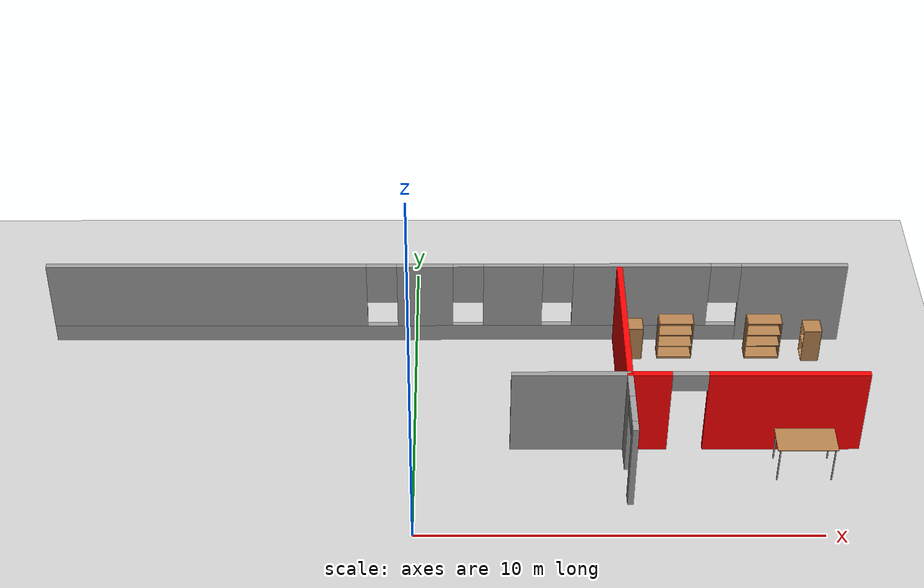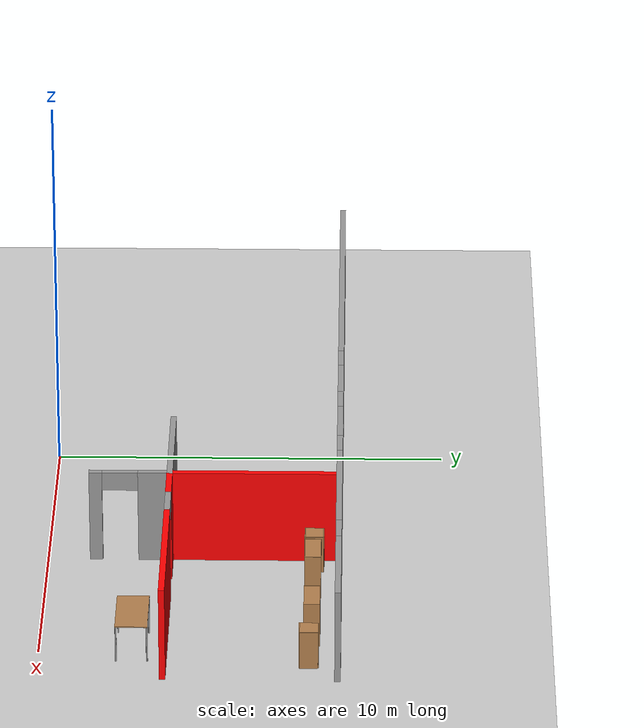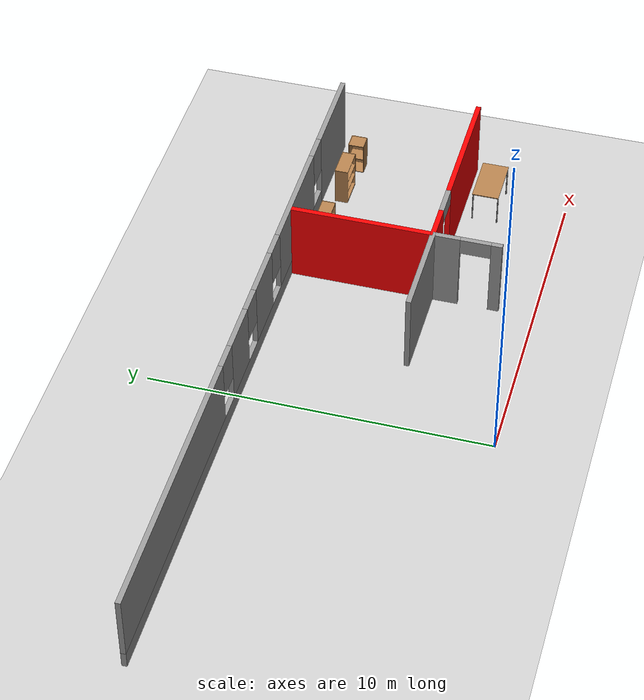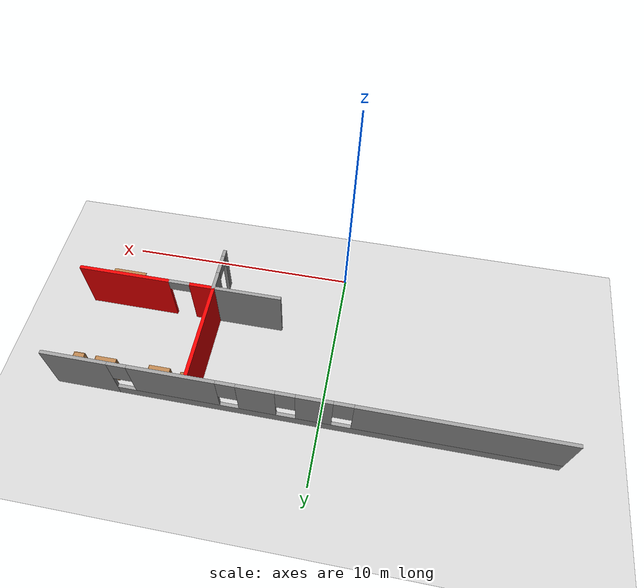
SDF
<sdf version="1.6">
 <world name="default">
  <model name="ground_plane">
   <static>1</static>
   <link name="link">
    <collision name="collision">
     <geometry><plane><normal>0 0 1</normal><size>100 100</size></plane></geometry>
     <surface>
      <contact><collide_bitmask>65535</collide_bitmask></contact>
      <friction><ode><mu>100</mu><mu2>50</mu2></ode></friction>
     </surface>
    </collision>
    <visual name="visual">
     <cast_shadows>0</cast_shadows>
     <geometry><plane><normal>0 0 1</normal><size>100 100</size></plane></geometry>
     <material>
      <script><uri>file://media/materials/scripts/gazebo.material</uri><name>Gazebo/Grey</name></script>
     </material>
    </visual>
   </link>
  </model>
  <model name="cabinet">
   <static>1</static>
   <link name="cabinet_bottom_plate">
    <inertial>
     <pose>0 0 -1 0 -0 0</pose>
     <inertia><ixx>2.05</ixx><ixy>0</ixy><ixz>0</ixz><iyy>2.05</iyy><iyz>0</iyz><izz>2.05</izz></inertia>
     <mass>25</mass>
    </inertial>
    <collision name="cabinet_bottom_plate_geom">
     <pose>0 0 0.01 0 -0 0</pose>
     <geometry><box><size>0.45 0.45 0.02</size></box></geometry>
    </collision>
    <visual name="cabinet_bottom_plate_geom_visual">
     <pose>0 0 0.01 0 -0 0</pose>
     <geometry><box><size>0.45 0.45 0.02</size></box></geometry>
     <material>
      <script><uri>file://media/materials/scripts/gazebo.material</uri><name>Gazebo/Wood</name></script>
     </material>
    </visual>
    <collision name="cabinet_bottom_plate_geom_cabinet_back_plate">
     <pose>0.235 0 0.51 0 -0 0</pose>
     <geometry><box><size>0.02 0.45 1.02</size></box></geometry>
    </collision>
    <visual name="cabinet_bottom_plate_geom_cabinet_back_plate_visual">
     <pose>0.235 0 0.51 0 -0 0</pose>
     <geometry><box><size>0.02 0.45 1.02</size></box></geometry>
     <material>
      <script><uri>file://media/materials/scripts/gazebo.material</uri><name>Gazebo/Wood</name></script>
     </material>
    </visual>
    <collision name="cabinet_bottom_plate_geom_cabinet_left_plate">
     <pose>0 0.235 0.51 0 -0 0</pose>
     <geometry><box><size>0.45 0.02 1.02</size></box></geometry>
    </collision>
    <visual name="cabinet_bottom_plate_geom_cabinet_left_plate_visual">
     <pose>0 0.235 0.51 0 -0 0</pose>
     <geometry><box><size>0.45 0.02 1.02</size></box></geometry>
     <material>
      <script><uri>file://media/materials/scripts/gazebo.material</uri><name>Gazebo/Wood</name></script>
     </material>
    </visual>
    <collision name="cabinet_bottom_plate_geom_cabinet_middle_plate">
     <pose>0 0 0.51 0 -0 0</pose>
     <geometry><box><size>0.45 0.45 0.02</size></box></geometry>
    </collision>
    <visual name="cabinet_bottom_plate_geom_cabinet_middle_plate_visual">
     <pose>0 0 0.51 0 -0 0</pose>
     <geometry><box><size>0.45 0.45 0.02</size></box></geometry>
     <material>
      <script><uri>file://media/materials/scripts/gazebo.material</uri><name>Gazebo/Wood</name></script>
     </material>
    </visual>
    <collision name="cabinet_bottom_plate_geom_cabinet_right_plate">
     <pose>0 -0.235 0.51 0 -0 0</pose>
     <geometry><box><size>0.45 0.02 1.02</size></box></geometry>
    </collision>
    <visual name="cabinet_bottom_plate_geom_cabinet_right_plate_visual">
     <pose>0 -0.235 0.51 0 -0 0</pose>
     <geometry><box><size>0.45 0.02 1.02</size></box></geometry>
     <material>
      <script><uri>file://media/materials/scripts/gazebo.material</uri><name>Gazebo/Wood</name></script>
     </material>
    </visual>
    <collision name="cabinet_bottom_plate_geom_cabinet_top_plate">
     <pose>0 0 1.01 0 -0 0</pose>
     <geometry><box><size>0.45 0.45 0.02</size></box></geometry>
    </collision>
    <visual name="cabinet_bottom_plate_geom_cabinet_top_plate_visual">
     <pose>0 0 1.01 0 -0 0</pose>
     <geometry><box><size>0.45 0.45 0.02</size></box></geometry>
     <material>
      <script><uri>file://media/materials/scripts/gazebo.material</uri><name>Gazebo/Wood</name></script>
     </material>
    </visual>
   </link>
   <pose>5.74006 6.73617 0 0 -0 0</pose>
  </model>
  <model name="cabinet_0">
   <static>1</static>
   <link name="cabinet_bottom_plate">
    <inertial>
     <pose>0 0 -1 0 -0 0</pose>
     <inertia><ixx>2.05</ixx><ixy>0</ixy><ixz>0</ixz><iyy>2.05</iyy><iyz>0</iyz><izz>2.05</izz></inertia>
     <mass>25</mass>
    </inertial>
    <collision name="cabinet_bottom_plate_geom">
     <pose>0 0 0.01 0 -0 0</pose>
     <geometry><box><size>0.45 0.45 0.02</size></box></geometry>
    </collision>
    <visual name="cabinet_bottom_plate_geom_visual">
     <pose>0 0 0.01 0 -0 0</pose>
     <geometry><box><size>0.45 0.45 0.02</size></box></geometry>
     <material>
      <script><uri>file://media/materials/scripts/gazebo.material</uri><name>Gazebo/Wood</name></script>
     </material>
    </visual>
    <collision name="cabinet_bottom_plate_geom_cabinet_back_plate">
     <pose>0.235 0 0.51 0 -0 0</pose>
     <geometry><box><size>0.02 0.45 1.02</size></box></geometry>
    </collision>
    <visual name="cabinet_bottom_plate_geom_cabinet_back_plate_visual">
     <pose>0.235 0 0.51 0 -0 0</pose>
     <geometry><box><size>0.02 0.45 1.02</size></box></geometry>
     <material>
      <script><uri>file://media/materials/scripts/gazebo.material</uri><name>Gazebo/Wood</name></script>
     </material>
    </visual>
    <collision name="cabinet_bottom_plate_geom_cabinet_left_plate">
     <pose>0 0.235 0.51 0 -0 0</pose>
     <geometry><box><size>0.45 0.02 1.02</size></box></geometry>
    </collision>
    <visual name="cabinet_bottom_plate_geom_cabinet_left_plate_visual">
     <pose>0 0.235 0.51 0 -0 0</pose>
     <geometry><box><size>0.45 0.02 1.02</size></box></geometry>
     <material>
      <script><uri>file://media/materials/scripts/gazebo.material</uri><name>Gazebo/Wood</name></script>
     </material>
    </visual>
    <collision name="cabinet_bottom_plate_geom_cabinet_middle_plate">
     <pose>0 0 0.51 0 -0 0</pose>
     <geometry><box><size>0.45 0.45 0.02</size></box></geometry>
    </collision>
    <visual name="cabinet_bottom_plate_geom_cabinet_middle_plate_visual">
     <pose>0 0 0.51 0 -0 0</pose>
     <geometry><box><size>0.45 0.45 0.02</size></box></geometry>
     <material>
      <script><uri>file://media/materials/scripts/gazebo.material</uri><name>Gazebo/Wood</name></script>
     </material>
    </visual>
    <collision name="cabinet_bottom_plate_geom_cabinet_right_plate">
     <pose>0 -0.235 0.51 0 -0 0</pose>
     <geometry><box><size>0.45 0.02 1.02</size></box></geometry>
    </collision>
    <visual name="cabinet_bottom_plate_geom_cabinet_right_plate_visual">
     <pose>0 -0.235 0.51 0 -0 0</pose>
     <geometry><box><size>0.45 0.02 1.02</size></box></geometry>
     <material>
      <script><uri>file://media/materials/scripts/gazebo.material</uri><name>Gazebo/Wood</name></script>
     </material>
    </visual>
    <collision name="cabinet_bottom_plate_geom_cabinet_top_plate">
     <pose>0 0 1.01 0 -0 0</pose>
     <geometry><box><size>0.45 0.45 0.02</size></box></geometry>
    </collision>
    <visual name="cabinet_bottom_plate_geom_cabinet_top_plate_visual">
     <pose>0 0 1.01 0 -0 0</pose>
     <geometry><box><size>0.45 0.45 0.02</size></box></geometry>
     <material>
      <script><uri>file://media/materials/scripts/gazebo.material</uri><name>Gazebo/Wood</name></script>
     </material>
    </visual>
   </link>
   <pose>10.4373 6.648 0 0 -0 0</pose>
  </model>
  <model name="bookshelf">
   <static>1</static>
   <link name="link">
    <inertial><mass>1</mass></inertial>
    <collision name="back">
     <pose>0 0.005 0.6 0 -0 0</pose>
     <geometry><box><size>0.9 0.01 1.2</size></box></geometry>
    </collision>
    <visual name="visual1">
     <pose>0 0.005 0.6 0 -0 0</pose>
     <geometry><box><size>0.9 0.01 1.2</size></box></geometry>
     <material>
      <script><uri>file://media/materials/scripts/gazebo.material</uri><name>Gazebo/Wood</name></script>
     </material>
    </visual>
    <collision name="left_side">
     <pose>0.45 -0.195 0.6 0 -0 0</pose>
     <geometry><box><size>0.02 0.4 1.2</size></box></geometry>
    </collision>
    <visual name="visual2">
     <pose>0.45 -0.195 0.6 0 -0 0</pose>
     <geometry><box><size>0.02 0.4 1.2</size></box></geometry>
     <material>
      <script><uri>file://media/materials/scripts/gazebo.material</uri><name>Gazebo/Wood</name></script>
     </material>
    </visual>
    <collision name="right_side">
     <pose>-0.45 -0.195 0.6 0 -0 0</pose>
     <geometry><box><size>0.02 0.4 1.2</size></box></geometry>
    </collision>
    <visual name="visual3">
     <pose>-0.45 -0.195 0.6 0 -0 0</pose>
     <geometry><box><size>0.02 0.4 1.2</size></box></geometry>
     <material>
      <script><uri>file://media/materials/scripts/gazebo.material</uri><name>Gazebo/Wood</name></script>
     </material>
    </visual>
    <collision name="bottom">
     <pose>0 -0.195 0.03 0 -0 0</pose>
     <geometry><box><size>0.88 0.4 0.06</size></box></geometry>
    </collision>
    <visual name="visual4">
     <pose>0 -0.195 0.03 0 -0 0</pose>
     <geometry><box><size>0.88 0.4 0.06</size></box></geometry>
     <material>
      <script><uri>file://media/materials/scripts/gazebo.material</uri><name>Gazebo/Wood</name></script>
     </material>
    </visual>
    <collision name="top">
     <pose>0 -0.195 1.19 0 -0 0</pose>
     <geometry><box><size>0.88 0.4 0.02</size></box></geometry>
    </collision>
    <visual name="visual5">
     <pose>0 -0.195 1.19 0 -0 0</pose>
     <geometry><box><size>0.88 0.4 0.02</size></box></geometry>
     <material>
      <script><uri>file://media/materials/scripts/gazebo.material</uri><name>Gazebo/Wood</name></script>
     </material>
    </visual>
    <collision name="low_shelf">
     <pose>0 -0.195 0.43 0 -0 0</pose>
     <geometry><box><size>0.88 0.4 0.02</size></box></geometry>
    </collision>
    <visual name="visual6">
     <pose>0 -0.195 0.43 0 -0 0</pose>
     <geometry><box><size>0.88 0.4 0.02</size></box></geometry>
     <material>
      <script><uri>file://media/materials/scripts/gazebo.material</uri><name>Gazebo/Wood</name></script>
     </material>
    </visual>
    <collision name="high_shelf">
     <pose>0 -0.195 0.8 0 -0 0</pose>
     <geometry><box><size>0.88 0.4 0.02</size></box></geometry>
    </collision>
    <visual name="visual7">
     <pose>0 -0.195 0.8 0 -0 0</pose>
     <geometry><box><size>0.88 0.4 0.02</size></box></geometry>
     <material>
      <script><uri>file://media/materials/scripts/gazebo.material</uri><name>Gazebo/Wood</name></script>
     </material>
    </visual>
   </link>
   <pose>6.84495 6.9034 0 0 -0 0</pose>
  </model>
  <model name="bookshelf_0">
   <static>1</static>
   <link name="link">
    <inertial><mass>1</mass></inertial>
    <collision name="back">
     <pose>0 0.005 0.6 0 -0 0</pose>
     <geometry><box><size>0.9 0.01 1.2</size></box></geometry>
    </collision>
    <visual name="visual1">
     <pose>0 0.005 0.6 0 -0 0</pose>
     <geometry><box><size>0.9 0.01 1.2</size></box></geometry>
     <material>
      <script><uri>file://media/materials/scripts/gazebo.material</uri><name>Gazebo/Wood</name></script>
     </material>
    </visual>
    <collision name="left_side">
     <pose>0.45 -0.195 0.6 0 -0 0</pose>
     <geometry><box><size>0.02 0.4 1.2</size></box></geometry>
    </collision>
    <visual name="visual2">
     <pose>0.45 -0.195 0.6 0 -0 0</pose>
     <geometry><box><size>0.02 0.4 1.2</size></box></geometry>
     <material>
      <script><uri>file://media/materials/scripts/gazebo.material</uri><name>Gazebo/Wood</name></script>
     </material>
    </visual>
    <collision name="right_side">
     <pose>-0.45 -0.195 0.6 0 -0 0</pose>
     <geometry><box><size>0.02 0.4 1.2</size></box></geometry>
    </collision>
    <visual name="visual3">
     <pose>-0.45 -0.195 0.6 0 -0 0</pose>
     <geometry><box><size>0.02 0.4 1.2</size></box></geometry>
     <material>
      <script><uri>file://media/materials/scripts/gazebo.material</uri><name>Gazebo/Wood</name></script>
     </material>
    </visual>
    <collision name="bottom">
     <pose>0 -0.195 0.03 0 -0 0</pose>
     <geometry><box><size>0.88 0.4 0.06</size></box></geometry>
    </collision>
    <visual name="visual4">
     <pose>0 -0.195 0.03 0 -0 0</pose>
     <geometry><box><size>0.88 0.4 0.06</size></box></geometry>
     <material>
      <script><uri>file://media/materials/scripts/gazebo.material</uri><name>Gazebo/Wood</name></script>
     </material>
    </visual>
    <collision name="top">
     <pose>0 -0.195 1.19 0 -0 0</pose>
     <geometry><box><size>0.88 0.4 0.02</size></box></geometry>
    </collision>
    <visual name="visual5">
     <pose>0 -0.195 1.19 0 -0 0</pose>
     <geometry><box><size>0.88 0.4 0.02</size></box></geometry>
     <material>
      <script><uri>file://media/materials/scripts/gazebo.material</uri><name>Gazebo/Wood</name></script>
     </material>
    </visual>
    <collision name="low_shelf">
     <pose>0 -0.195 0.43 0 -0 0</pose>
     <geometry><box><size>0.88 0.4 0.02</size></box></geometry>
    </collision>
    <visual name="visual6">
     <pose>0 -0.195 0.43 0 -0 0</pose>
     <geometry><box><size>0.88 0.4 0.02</size></box></geometry>
     <material>
      <script><uri>file://media/materials/scripts/gazebo.material</uri><name>Gazebo/Wood</name></script>
     </material>
    </visual>
    <collision name="high_shelf">
     <pose>0 -0.195 0.8 0 -0 0</pose>
     <geometry><box><size>0.88 0.4 0.02</size></box></geometry>
    </collision>
    <visual name="visual7">
     <pose>0 -0.195 0.8 0 -0 0</pose>
     <geometry><box><size>0.88 0.4 0.02</size></box></geometry>
     <material>
      <script><uri>file://media/materials/scripts/gazebo.material</uri><name>Gazebo/Wood</name></script>
     </material>
    </visual>
   </link>
   <pose>9.1737 6.90323 0 0 -0 0</pose>
  </model>
  <model name="table_4">
   <static>1</static>
   <link name="link">
    <collision name="surface">
     <pose>0 0 1 0 -0 0</pose>
     <geometry><box><size>1.5 0.8 0.03</size></box></geometry>
     <surface><friction><ode><mu>0.6</mu><mu2>0.6</mu2></ode></friction></surface>
    </collision>
    <visual name="visual1">
     <pose>0 0 1 0 -0 0</pose>
     <geometry><box><size>1.5 0.8 0.03</size></box></geometry>
     <material>
      <script><uri>file://media/materials/scripts/gazebo.material</uri><name>Gazebo/Wood</name></script>
     </material>
    </visual>
    <collision name="front_left_leg">
     <pose>0.68 0.38 0.5 0 -0 0</pose>
     <geometry><cylinder><radius>0.02</radius><length>1</length></cylinder></geometry>
    </collision>
    <visual name="front_left_leg">
     <pose>0.68 0.38 0.5 0 -0 0</pose>
     <geometry><cylinder><radius>0.02</radius><length>1</length></cylinder></geometry>
     <material>
      <script><uri>file://media/materials/scripts/gazebo.material</uri><name>Gazebo/Grey</name></script>
     </material>
    </visual>
    <collision name="front_right_leg">
     <pose>0.68 -0.38 0.5 0 -0 0</pose>
     <geometry><cylinder><radius>0.02</radius><length>1</length></cylinder></geometry>
    </collision>
    <visual name="front_right_leg">
     <pose>0.68 -0.38 0.5 0 -0 0</pose>
     <geometry><cylinder><radius>0.02</radius><length>1</length></cylinder></geometry>
     <material>
      <script><uri>file://media/materials/scripts/gazebo.material</uri><name>Gazebo/Grey</name></script>
     </material>
    </visual>
    <collision name="back_right_leg">
     <pose>-0.68 -0.38 0.5 0 -0 0</pose>
     <geometry><cylinder><radius>0.02</radius><length>1</length></cylinder></geometry>
    </collision>
    <visual name="back_right_leg">
     <pose>-0.68 -0.38 0.5 0 -0 0</pose>
     <geometry><cylinder><radius>0.02</radius><length>1</length></cylinder></geometry>
     <material>
      <script><uri>file://media/materials/scripts/gazebo.material</uri><name>Gazebo/Grey</name></script>
     </material>
    </visual>
    <collision name="back_left_leg">
     <pose>-0.68 0.38 0.5 0 -0 0</pose>
     <geometry><cylinder><radius>0.02</radius><length>1</length></cylinder></geometry>
    </collision>
    <visual name="back_left_leg">
     <pose>-0.68 0.38 0.5 0 -0 0</pose>
     <geometry><cylinder><radius>0.02</radius><length>1</length></cylinder></geometry>
     <material>
      <script><uri>file://media/materials/scripts/gazebo.material</uri><name>Gazebo/Grey</name></script>
     </material>
    </visual>
   </link>
   <pose>9.71379 2.30831 0 0 -0 0</pose>
  </model>
  <model name="Building">
   <link name="Wall_23">
    <pose>3.08665 4.40915 0 0 -0 7.8e-05</pose>
    <inertial>
     <mass>1</mass>
     <inertia><ixx>1</ixx><ixy>0</ixy><ixz>0</ixz><iyy>1</iyy><iyz>0</iyz><izz>1</izz></inertia>
    </inertial>
    <visual name="Wall_23_Visual">
     <pose>0 0 1.25 0 -0 0</pose>
     <geometry><box><size>3 0.15 2.5</size></box></geometry>
     <material>
      <script><uri>file://media/materials/scripts/gazebo.material</uri><name>Gazebo/Grey</name></script>
      <ambient>0 0 0 1</ambient>
      <shader type="pixel"><normal_map>__default__</normal_map></shader>
      <diffuse>0.7 0.7 0.7 1</diffuse>
      <specular>0.01 0.01 0.01 1</specular>
      <emissive>0 0 0 1</emissive>
     </material>
     <meta><layer>0</layer></meta>
    </visual>
    <collision name="Wall_23_Collision">
     <pose>0 0 1.25 0 -0 0</pose>
     <geometry><box><size>3 0.15 2.5</size></box></geometry>
     <surface>
      <friction>
       <ode><mu>1</mu><mu2>1</mu2><fdir1>0 0 0</fdir1><slip1>0</slip1><slip2>0</slip2></ode>
       <torsional>
        <coefficient>1</coefficient>
        <patch_radius>0</patch_radius>
        <surface_radius>0</surface_radius>
        <use_patch_radius>1</use_patch_radius>
        <ode><slip>0</slip></ode>
       </torsional>
      </friction>
      <bounce><restitution_coefficient>0</restitution_coefficient><threshold>1e+06</threshold></bounce>
      <contact>
       <collide_without_contact>0</collide_without_contact>
       <collide_without_contact_bitmask>1</collide_without_contact_bitmask>
       <collide_bitmask>1</collide_bitmask>
       <ode>
        <soft_cfm>0</soft_cfm>
        <soft_erp>0.2</soft_erp>
        <kp>1e+13</kp>
        <kd>1</kd>
        <max_vel>0.01</max_vel>
        <min_depth>0</min_depth>
       </ode>
       <bullet>
        <split_impulse>1</split_impulse>
        <split_impulse_penetration_threshold>-0.01</split_impulse_penetration_threshold>
        <soft_cfm>0</soft_cfm>
        <soft_erp>0.2</soft_erp>
        <kp>1e+13</kp>
        <kd>1</kd>
       </bullet>
      </contact>
     </surface>
    </collision>
   </link>
   <link name="Wall_24">
    <pose>4.51162 6.46826 0 0 -0 1.5708</pose>
    <inertial>
     <mass>1</mass>
     <inertia><ixx>1</ixx><ixy>0</ixy><ixz>0</ixz><iyy>1</iyy><iyz>0</iyz><izz>1</izz></inertia>
    </inertial>
    <visual name="Wall_24_Visual">
     <pose>0 0 1.25 0 -0 0</pose>
     <geometry><box><size>4.268 0.15 2.5</size></box></geometry>
     <material>
      <script><uri>file://media/materials/scripts/gazebo.material</uri><name>Gazebo/Grey</name></script>
      <ambient>1 0 0 1</ambient>
      <shader type="pixel"><normal_map>__default__</normal_map></shader>
      <diffuse>0.7 0.7 0.7 1</diffuse>
      <specular>0.01 0.01 0.01 1</specular>
      <emissive>0 0 0 1</emissive>
     </material>
     <meta><layer>0</layer></meta>
    </visual>
    <collision name="Wall_24_Collision">
     <pose>0 0 1.25 0 -0 0</pose>
     <geometry><box><size>4.268 0.15 2.5</size></box></geometry>
     <surface>
      <friction>
       <ode><mu>1</mu><mu2>1</mu2><fdir1>0 0 0</fdir1><slip1>0</slip1><slip2>0</slip2></ode>
       <torsional>
        <coefficient>1</coefficient>
        <patch_radius>0</patch_radius>
        <surface_radius>0</surface_radius>
        <use_patch_radius>1</use_patch_radius>
        <ode><slip>0</slip></ode>
       </torsional>
      </friction>
      <bounce><restitution_coefficient>0</restitution_coefficient><threshold>1e+06</threshold></bounce>
      <contact>
       <collide_without_contact>0</collide_without_contact>
       <collide_without_contact_bitmask>1</collide_without_contact_bitmask>
       <collide_bitmask>1</collide_bitmask>
       <ode>
        <soft_cfm>0</soft_cfm>
        <soft_erp>0.2</soft_erp>
        <kp>1e+13</kp>
        <kd>1</kd>
        <max_vel>0.01</max_vel>
        <min_depth>0</min_depth>
       </ode>
       <bullet>
        <split_impulse>1</split_impulse>
        <split_impulse_penetration_threshold>-0.01</split_impulse_penetration_threshold>
        <soft_cfm>0</soft_cfm>
        <soft_erp>0.2</soft_erp>
        <kp>1e+13</kp>
        <kd>1</kd>
       </bullet>
      </contact>
     </surface>
    </collision>
   </link>
   <link name="Wall_30">
    <pose>4.51331 3.42988 0 0 -0 1.57252</pose>
    <inertial>
     <mass>1</mass>
     <inertia><ixx>1</ixx><ixy>0</ixy><ixz>0</ixz><iyy>1</iyy><iyz>0</iyz><izz>1</izz></inertia>
    </inertial>
    <visual name="Wall_30_Visual_2">
     <pose>-0.276937 0 2.25 0 -0 0</pose>
     <geometry><box><size>0.9 0.15 0.5</size></box></geometry>
     <material>
      <script><uri>file://media/materials/scripts/gazebo.material</uri><name>Gazebo/Grey</name></script>
      <ambient>0 0 0 1</ambient>
      <shader type="pixel"><normal_map>__default__</normal_map></shader>
      <diffuse>0.7 0.7 0.7 1</diffuse>
      <specular>0.01 0.01 0.01 1</specular>
      <emissive>0 0 0 1</emissive>
     </material>
     <meta><layer>0</layer></meta>
    </visual>
    <visual name="Wall_30_Visual_0">
     <pose>-0.890603 0 1.25 0 -0 0</pose>
     <geometry><box><size>0.327334 0.15 2.5</size></box></geometry>
     <material>
      <script><uri>file://media/materials/scripts/gazebo.material</uri><name>Gazebo/Grey</name></script>
      <ambient>0 0 0 1</ambient>
      <shader type="pixel"><normal_map>__default__</normal_map></shader>
      <diffuse>0.7 0.7 0.7 1</diffuse>
      <specular>0.01 0.01 0.01 1</specular>
      <emissive>0 0 0 1</emissive>
     </material>
     <meta><layer>0</layer></meta>
    </visual>
    <visual name="Wall_30_Visual_1">
     <pose>0.613667 0 1.25 0 -0 0</pose>
     <geometry><box><size>0.881207 0.15 2.5</size></box></geometry>
     <material>
      <script><uri>file://media/materials/scripts/gazebo.material</uri><name>Gazebo/Grey</name></script>
      <ambient>0 0 0 1</ambient>
      <shader type="pixel"><normal_map>__default__</normal_map></shader>
      <diffuse>0.7 0.7 0.7 1</diffuse>
      <specular>0.01 0.01 0.01 1</specular>
      <emissive>0 0 0 1</emissive>
     </material>
     <meta><layer>0</layer></meta>
    </visual>
    <collision name="Wall_30_Collision_2">
     <pose>-0.276937 0 2.25 0 -0 0</pose>
     <geometry><box><size>0.9 0.15 0.5</size></box></geometry>
     <surface>
      <friction>
       <ode><mu>1</mu><mu2>1</mu2><fdir1>0 0 0</fdir1><slip1>0</slip1><slip2>0</slip2></ode>
       <torsional>
        <coefficient>1</coefficient>
        <patch_radius>0</patch_radius>
        <surface_radius>0</surface_radius>
        <use_patch_radius>1</use_patch_radius>
        <ode><slip>0</slip></ode>
       </torsional>
      </friction>
      <bounce><restitution_coefficient>0</restitution_coefficient><threshold>1e+06</threshold></bounce>
      <contact>
       <collide_without_contact>0</collide_without_contact>
       <collide_without_contact_bitmask>1</collide_without_contact_bitmask>
       <collide_bitmask>1</collide_bitmask>
       <ode>
        <soft_cfm>0</soft_cfm>
        <soft_erp>0.2</soft_erp>
        <kp>1e+13</kp>
        <kd>1</kd>
        <max_vel>0.01</max_vel>
        <min_depth>0</min_depth>
       </ode>
       <bullet>
        <split_impulse>1</split_impulse>
        <split_impulse_penetration_threshold>-0.01</split_impulse_penetration_threshold>
        <soft_cfm>0</soft_cfm>
        <soft_erp>0.2</soft_erp>
        <kp>1e+13</kp>
        <kd>1</kd>
       </bullet>
      </contact>
     </surface>
    </collision>
    <collision name="Wall_30_Collision_1">
     <pose>0.613667 0 1.25 0 -0 0</pose>
     <geometry><box><size>0.881207 0.15 2.5</size></box></geometry>
     <surface>
      <friction>
       <ode><mu>1</mu><mu2>1</mu2><fdir1>0 0 0</fdir1><slip1>0</slip1><slip2>0</slip2></ode>
       <torsional>
        <coefficient>1</coefficient>
        <patch_radius>0</patch_radius>
        <surface_radius>0</surface_radius>
        <use_patch_radius>1</use_patch_radius>
        <ode><slip>0</slip></ode>
       </torsional>
      </friction>
      <bounce><restitution_coefficient>0</restitution_coefficient><threshold>1e+06</threshold></bounce>
      <contact>
       <collide_without_contact>0</collide_without_contact>
       <collide_without_contact_bitmask>1</collide_without_contact_bitmask>
       <collide_bitmask>1</collide_bitmask>
       <ode>
        <soft_cfm>0</soft_cfm>
        <soft_erp>0.2</soft_erp>
        <kp>1e+13</kp>
        <kd>1</kd>
        <max_vel>0.01</max_vel>
        <min_depth>0</min_depth>
       </ode>
       <bullet>
        <split_impulse>1</split_impulse>
        <split_impulse_penetration_threshold>-0.01</split_impulse_penetration_threshold>
        <soft_cfm>0</soft_cfm>
        <soft_erp>0.2</soft_erp>
        <kp>1e+13</kp>
        <kd>1</kd>
       </bullet>
      </contact>
     </surface>
    </collision>
    <collision name="Wall_30_Collision_0">
     <pose>-0.890603 0 1.25 0 -0 0</pose>
     <geometry><box><size>0.327334 0.15 2.5</size></box></geometry>
     <surface>
      <friction>
       <ode><mu>1</mu><mu2>1</mu2><fdir1>0 0 0</fdir1><slip1>0</slip1><slip2>0</slip2></ode>
       <torsional>
        <coefficient>1</coefficient>
        <patch_radius>0</patch_radius>
        <surface_radius>0</surface_radius>
        <use_patch_radius>1</use_patch_radius>
        <ode><slip>0</slip></ode>
       </torsional>
      </friction>
      <bounce><restitution_coefficient>0</restitution_coefficient><threshold>1e+06</threshold></bounce>
      <contact>
       <collide_without_contact>0</collide_without_contact>
       <collide_without_contact_bitmask>1</collide_without_contact_bitmask>
       <collide_bitmask>1</collide_bitmask>
       <ode>
        <soft_cfm>0</soft_cfm>
        <soft_erp>0.2</soft_erp>
        <kp>1e+13</kp>
        <kd>1</kd>
        <max_vel>0.01</max_vel>
        <min_depth>0</min_depth>
       </ode>
       <bullet>
        <split_impulse>1</split_impulse>
        <split_impulse_penetration_threshold>-0.01</split_impulse_penetration_threshold>
        <soft_cfm>0</soft_cfm>
        <soft_erp>0.2</soft_erp>
        <kp>1e+13</kp>
        <kd>1</kd>
       </bullet>
      </contact>
     </surface>
    </collision>
   </link>
   <link name="Wall_32">
    <pose>7.43665 4.40915 0 0 0 -3.8e-05</pose>
    <inertial>
     <mass>1</mass>
     <inertia><ixx>1</ixx><ixy>0</ixy><ixz>0</ixz><iyy>1</iyy><iyz>0</iyz><izz>1</izz></inertia>
    </inertial>
    <visual name="Wall_32_Visual_2">
     <pose>-1.43369 0 2.25 0 -0 0</pose>
     <geometry><box><size>0.9 0.15 0.5</size></box></geometry>
     <material>
      <script><uri>file://media/materials/scripts/gazebo.material</uri><name>Gazebo/Grey</name></script>
      <ambient>1 1 1 1</ambient>
      <shader type="pixel"><normal_map>__default__</normal_map></shader>
      <diffuse>0.7 0.7 0.7 1</diffuse>
      <specular>0.01 0.01 0.01 1</specular>
      <emissive>0 0 0 1</emissive>
     </material>
     <meta><layer>0</layer></meta>
    </visual>
    <visual name="Wall_32_Visual_1">
     <pose>1.00815 0 1.25 0 -0 0</pose>
     <geometry><box><size>3.98369 0.15 2.5</size></box></geometry>
     <material>
      <script><uri>file://media/materials/scripts/gazebo.material</uri><name>Gazebo/Grey</name></script>
      <ambient>1 0 0 1</ambient>
      <shader type="pixel"><normal_map>__default__</normal_map></shader>
      <diffuse>0.7 0.7 0.7 1</diffuse>
      <specular>0.01 0.01 0.01 1</specular>
      <emissive>0 0 0 1</emissive>
     </material>
     <meta><layer>0</layer></meta>
    </visual>
    <visual name="Wall_32_Visual_0">
     <pose>-2.44184 0 1.25 0 -0 0</pose>
     <geometry><box><size>1.11631 0.15 2.5</size></box></geometry>
     <material>
      <script><uri>file://media/materials/scripts/gazebo.material</uri><name>Gazebo/Grey</name></script>
      <ambient>1 0 0 1</ambient>
      <shader type="pixel"><normal_map>__default__</normal_map></shader>
      <diffuse>0.7 0.7 0.7 1</diffuse>
      <specular>0.01 0.01 0.01 1</specular>
      <emissive>0 0 0 1</emissive>
     </material>
     <meta><layer>0</layer></meta>
    </visual>
    <collision name="Wall_32_Collision_1">
     <pose>1.00815 0 1.25 0 -0 0</pose>
     <geometry><box><size>3.98369 0.15 2.5</size></box></geometry>
     <surface>
      <friction>
       <ode><mu>1</mu><mu2>1</mu2><fdir1>0 0 0</fdir1><slip1>0</slip1><slip2>0</slip2></ode>
       <torsional>
        <coefficient>1</coefficient>
        <patch_radius>0</patch_radius>
        <surface_radius>0</surface_radius>
        <use_patch_radius>1</use_patch_radius>
        <ode><slip>0</slip></ode>
       </torsional>
      </friction>
      <bounce><restitution_coefficient>0</restitution_coefficient><threshold>1e+06</threshold></bounce>
      <contact>
       <collide_without_contact>0</collide_without_contact>
       <collide_without_contact_bitmask>1</collide_without_contact_bitmask>
       <collide_bitmask>1</collide_bitmask>
       <ode>
        <soft_cfm>0</soft_cfm>
        <soft_erp>0.2</soft_erp>
        <kp>1e+13</kp>
        <kd>1</kd>
        <max_vel>0.01</max_vel>
        <min_depth>0</min_depth>
       </ode>
       <bullet>
        <split_impulse>1</split_impulse>
        <split_impulse_penetration_threshold>-0.01</split_impulse_penetration_threshold>
        <soft_cfm>0</soft_cfm>
        <soft_erp>0.2</soft_erp>
        <kp>1e+13</kp>
        <kd>1</kd>
       </bullet>
      </contact>
     </surface>
    </collision>
    <collision name="Wall_32_Collision_2">
     <pose>-1.43369 0 2.25 0 -0 0</pose>
     <geometry><box><size>0.9 0.15 0.5</size></box></geometry>
     <surface>
      <friction>
       <ode><mu>1</mu><mu2>1</mu2><fdir1>0 0 0</fdir1><slip1>0</slip1><slip2>0</slip2></ode>
       <torsional>
        <coefficient>1</coefficient>
        <patch_radius>0</patch_radius>
        <surface_radius>0</surface_radius>
        <use_patch_radius>1</use_patch_radius>
        <ode><slip>0</slip></ode>
       </torsional>
      </friction>
      <bounce><restitution_coefficient>0</restitution_coefficient><threshold>1e+06</threshold></bounce>
      <contact>
       <collide_without_contact>0</collide_without_contact>
       <collide_without_contact_bitmask>1</collide_without_contact_bitmask>
       <collide_bitmask>1</collide_bitmask>
       <ode>
        <soft_cfm>0</soft_cfm>
        <soft_erp>0.2</soft_erp>
        <kp>1e+13</kp>
        <kd>1</kd>
        <max_vel>0.01</max_vel>
        <min_depth>0</min_depth>
       </ode>
       <bullet>
        <split_impulse>1</split_impulse>
        <split_impulse_penetration_threshold>-0.01</split_impulse_penetration_threshold>
        <soft_cfm>0</soft_cfm>
        <soft_erp>0.2</soft_erp>
        <kp>1e+13</kp>
        <kd>1</kd>
       </bullet>
      </contact>
     </surface>
    </collision>
    <collision name="Wall_32_Collision_0">
     <pose>-2.44184 0 1.25 0 -0 0</pose>
     <geometry><box><size>1.11631 0.15 2.5</size></box></geometry>
     <surface>
      <friction>
       <ode><mu>1</mu><mu2>1</mu2><fdir1>0 0 0</fdir1><slip1>0</slip1><slip2>0</slip2></ode>
       <torsional>
        <coefficient>1</coefficient>
        <patch_radius>0</patch_radius>
        <surface_radius>0</surface_radius>
        <use_patch_radius>1</use_patch_radius>
        <ode><slip>0</slip></ode>
       </torsional>
      </friction>
      <bounce><restitution_coefficient>0</restitution_coefficient><threshold>1e+06</threshold></bounce>
      <contact>
       <collide_without_contact>0</collide_without_contact>
       <collide_without_contact_bitmask>1</collide_without_contact_bitmask>
       <collide_bitmask>1</collide_bitmask>
       <ode>
        <soft_cfm>0</soft_cfm>
        <soft_erp>0.2</soft_erp>
        <kp>1e+13</kp>
        <kd>1</kd>
        <max_vel>0.01</max_vel>
        <min_depth>0</min_depth>
       </ode>
       <bullet>
        <split_impulse>1</split_impulse>
        <split_impulse_penetration_threshold>-0.01</split_impulse_penetration_threshold>
        <soft_cfm>0</soft_cfm>
        <soft_erp>0.2</soft_erp>
        <kp>1e+13</kp>
        <kd>1</kd>
       </bullet>
      </contact>
     </surface>
    </collision>
   </link>
   <link name="Wall_4">
    <pose>-0.009806 8.675 0 0 -0 3.14159</pose>
    <inertial>
     <mass>1</mass>
     <inertia><ixx>1</ixx><ixy>0</ixy><ixz>0</ixz><iyy>1</iyy><iyz>0</iyz><izz>1</izz></inertia>
    </inertial>
    <visual name="Wall_4_Visual_7">
     <pose>-2.92069 0 1.9 0 -0 0</pose>
     <geometry><box><size>0.8 0.15 1.2</size></box></geometry>
     <material>
      <script><uri>file://media/materials/scripts/gazebo.material</uri><name>Gazebo/Grey</name></script>
      <ambient>0.5 0.5 0.5 1</ambient>
      <shader type="pixel"><normal_map>__default__</normal_map></shader>
      <diffuse>0.7 0.7 0.7 1</diffuse>
      <specular>0.01 0.01 0.01 1</specular>
      <emissive>0 0 0 1</emissive>
     </material>
     <meta><layer>0</layer></meta>
    </visual>
    <visual name="Wall_4_Visual_2">
     <pose>-5.11769 0 1.5 0 -0 0</pose>
     <geometry><box><size>3.59401 0.15 2</size></box></geometry>
     <material>
      <script><uri>file://media/materials/scripts/gazebo.material</uri><name>Gazebo/Grey</name></script>
      <ambient>0.5 0.5 0.5 1</ambient>
      <shader type="pixel"><normal_map>__default__</normal_map></shader>
      <diffuse>0.7 0.7 0.7 1</diffuse>
      <specular>0.01 0.01 0.01 1</specular>
      <emissive>0 0 0 1</emissive>
     </material>
     <meta><layer>0</layer></meta>
    </visual>
    <visual name="Wall_4_Visual_6">
     <pose>-7.3147 0 1.9 0 -0 0</pose>
     <geometry><box><size>0.8 0.15 1.2</size></box></geometry>
     <material>
      <script><uri>file://media/materials/scripts/gazebo.material</uri><name>Gazebo/Grey</name></script>
      <ambient>0.5 0.5 0.5 1</ambient>
      <shader type="pixel"><normal_map>__default__</normal_map></shader>
      <diffuse>0.7 0.7 0.7 1</diffuse>
      <specular>0.01 0.01 0.01 1</specular>
      <emissive>0 0 0 1</emissive>
     </material>
     <meta><layer>0</layer></meta>
    </visual>
    <visual name="Wall_4_Visual_0">
     <pose>-9.10735 0 1.25 0 -0 0</pose>
     <geometry><box><size>2.7853 0.15 2.5</size></box></geometry>
     <material>
      <script><uri>file://media/materials/scripts/gazebo.material</uri><name>Gazebo/Grey</name></script>
      <ambient>0.5 0.5 0.5 1</ambient>
      <shader type="pixel"><normal_map>__default__</normal_map></shader>
      <diffuse>0.7 0.7 0.7 1</diffuse>
      <specular>0.01 0.01 0.01 1</specular>
      <emissive>0 0 0 1</emissive>
     </material>
     <meta><layer>0</layer></meta>
    </visual>
    <visual name="Wall_4_Visual_3">
     <pose>-1.74081 0 1.5 0 -0 0</pose>
     <geometry><box><size>1.55975 0.15 2</size></box></geometry>
     <material>
      <script><uri>file://media/materials/scripts/gazebo.material</uri><name>Gazebo/Grey</name></script>
      <ambient>0.5 0.5 0.5 1</ambient>
      <shader type="pixel"><normal_map>__default__</normal_map></shader>
      <diffuse>0.7 0.7 0.7 1</diffuse>
      <specular>0.01 0.01 0.01 1</specular>
      <emissive>0 0 0 1</emissive>
     </material>
     <meta><layer>0</layer></meta>
    </visual>
    <visual name="Wall_4_Visual_9">
     <pose>1.71744 0 1.9 0 -0 0</pose>
     <geometry><box><size>0.8 0.15 1.2</size></box></geometry>
     <material>
      <script><uri>file://media/materials/scripts/gazebo.material</uri><name>Gazebo/Grey</name></script>
      <ambient>0.5 0.5 0.5 1</ambient>
      <shader type="pixel"><normal_map>__default__</normal_map></shader>
      <diffuse>0.7 0.7 0.7 1</diffuse>
      <specular>0.01 0.01 0.01 1</specular>
      <emissive>0 0 0 1</emissive>
     </material>
     <meta><layer>0</layer></meta>
    </visual>
    <visual name="Wall_4_Visual_5">
     <pose>6.30872 0 1.5 0 -0 0</pose>
     <geometry><box><size>8.38256 0.15 2</size></box></geometry>
     <material>
      <script><uri>file://media/materials/scripts/gazebo.material</uri><name>Gazebo/Grey</name></script>
      <ambient>0.5 0.5 0.5 1</ambient>
      <shader type="pixel"><normal_map>__default__</normal_map></shader>
      <diffuse>0.7 0.7 0.7 1</diffuse>
      <specular>0.01 0.01 0.01 1</specular>
      <emissive>0 0 0 1</emissive>
     </material>
     <meta><layer>0</layer></meta>
    </visual>
    <visual name="Wall_4_Visual_1">
     <pose>1.39265 0 0.25 0 -0 0</pose>
     <geometry><box><size>18.2147 0.15 0.5</size></box></geometry>
     <material>
      <script><uri>file://media/materials/scripts/gazebo.material</uri><name>Gazebo/Grey</name></script>
      <ambient>0.5 0.5 0.5 1</ambient>
      <shader type="pixel"><normal_map>__default__</normal_map></shader>
      <diffuse>0.7 0.7 0.7 1</diffuse>
      <specular>0.01 0.01 0.01 1</specular>
      <emissive>0 0 0 1</emissive>
     </material>
     <meta><layer>0</layer></meta>
    </visual>
    <visual name="Wall_4_Visual_8">
     <pose>-0.560937 0 1.9 0 -0 0</pose>
     <geometry><box><size>0.8 0.15 1.2</size></box></geometry>
     <material>
      <script><uri>file://media/materials/scripts/gazebo.material</uri><name>Gazebo/Grey</name></script>
      <ambient>0.5 0.5 0.5 1</ambient>
      <shader type="pixel"><normal_map>__default__</normal_map></shader>
      <diffuse>0.7 0.7 0.7 1</diffuse>
      <specular>0.01 0.01 0.01 1</specular>
      <emissive>0 0 0 1</emissive>
     </material>
     <meta><layer>0</layer></meta>
    </visual>
    <visual name="Wall_4_Visual_4">
     <pose>0.578252 0 1.5 0 -0 0</pose>
     <geometry><box><size>1.47838 0.15 2</size></box></geometry>
     <material>
      <script><uri>file://media/materials/scripts/gazebo.material</uri><name>Gazebo/Grey</name></script>
      <ambient>0.5 0.5 0.5 1</ambient>
      <shader type="pixel"><normal_map>__default__</normal_map></shader>
      <diffuse>0.7 0.7 0.7 1</diffuse>
      <specular>0.01 0.01 0.01 1</specular>
      <emissive>0 0 0 1</emissive>
     </material>
     <meta><layer>0</layer></meta>
    </visual>
    <collision name="Wall_4_Collision_2">
     <pose>-5.11769 0 1.5 0 -0 0</pose>
     <geometry><box><size>3.59401 0.15 2</size></box></geometry>
     <surface>
      <friction>
       <ode><mu>1</mu><mu2>1</mu2><fdir1>0 0 0</fdir1><slip1>0</slip1><slip2>0</slip2></ode>
       <torsional>
        <coefficient>1</coefficient>
        <patch_radius>0</patch_radius>
        <surface_radius>0</surface_radius>
        <use_patch_radius>1</use_patch_radius>
        <ode><slip>0</slip></ode>
       </torsional>
      </friction>
      <bounce><restitution_coefficient>0</restitution_coefficient><threshold>1e+06</threshold></bounce>
      <contact>
       <collide_without_contact>0</collide_without_contact>
       <collide_without_contact_bitmask>1</collide_without_contact_bitmask>
       <collide_bitmask>1</collide_bitmask>
       <ode>
        <soft_cfm>0</soft_cfm>
        <soft_erp>0.2</soft_erp>
        <kp>1e+13</kp>
        <kd>1</kd>
        <max_vel>0.01</max_vel>
        <min_depth>0</min_depth>
       </ode>
       <bullet>
        <split_impulse>1</split_impulse>
        <split_impulse_penetration_threshold>-0.01</split_impulse_penetration_threshold>
        <soft_cfm>0</soft_cfm>
        <soft_erp>0.2</soft_erp>
        <kp>1e+13</kp>
        <kd>1</kd>
       </bullet>
      </contact>
     </surface>
    </collision>
    <collision name="Wall_4_Collision_3">
     <pose>-1.74081 0 1.5 0 -0 0</pose>
     <geometry><box><size>1.55975 0.15 2</size></box></geometry>
     <surface>
      <friction>
       <ode><mu>1</mu><mu2>1</mu2><fdir1>0 0 0</fdir1><slip1>0</slip1><slip2>0</slip2></ode>
       <torsional>
        <coefficient>1</coefficient>
        <patch_radius>0</patch_radius>
        <surface_radius>0</surface_radius>
        <use_patch_radius>1</use_patch_radius>
        <ode><slip>0</slip></ode>
       </torsional>
      </friction>
      <bounce><restitution_coefficient>0</restitution_coefficient><threshold>1e+06</threshold></bounce>
      <contact>
       <collide_without_contact>0</collide_without_contact>
       <collide_without_contact_bitmask>1</collide_without_contact_bitmask>
       <collide_bitmask>1</collide_bitmask>
       <ode>
        <soft_cfm>0</soft_cfm>
        <soft_erp>0.2</soft_erp>
        <kp>1e+13</kp>
        <kd>1</kd>
        <max_vel>0.01</max_vel>
        <min_depth>0</min_depth>
       </ode>
       <bullet>
        <split_impulse>1</split_impulse>
        <split_impulse_penetration_threshold>-0.01</split_impulse_penetration_threshold>
        <soft_cfm>0</soft_cfm>
        <soft_erp>0.2</soft_erp>
        <kp>1e+13</kp>
        <kd>1</kd>
       </bullet>
      </contact>
     </surface>
    </collision>
    <collision name="Wall_4_Collision_7">
     <pose>-2.92069 0 1.9 0 -0 0</pose>
     <geometry><box><size>0.8 0.15 1.2</size></box></geometry>
     <surface>
      <friction>
       <ode><mu>1</mu><mu2>1</mu2><fdir1>0 0 0</fdir1><slip1>0</slip1><slip2>0</slip2></ode>
       <torsional>
        <coefficient>1</coefficient>
        <patch_radius>0</patch_radius>
        <surface_radius>0</surface_radius>
        <use_patch_radius>1</use_patch_radius>
        <ode><slip>0</slip></ode>
       </torsional>
      </friction>
      <bounce><restitution_coefficient>0</restitution_coefficient><threshold>1e+06</threshold></bounce>
      <contact>
       <collide_without_contact>0</collide_without_contact>
       <collide_without_contact_bitmask>1</collide_without_contact_bitmask>
       <collide_bitmask>1</collide_bitmask>
       <ode>
        <soft_cfm>0</soft_cfm>
        <soft_erp>0.2</soft_erp>
        <kp>1e+13</kp>
        <kd>1</kd>
        <max_vel>0.01</max_vel>
        <min_depth>0</min_depth>
       </ode>
       <bullet>
        <split_impulse>1</split_impulse>
        <split_impulse_penetration_threshold>-0.01</split_impulse_penetration_threshold>
        <soft_cfm>0</soft_cfm>
        <soft_erp>0.2</soft_erp>
        <kp>1e+13</kp>
        <kd>1</kd>
       </bullet>
      </contact>
     </surface>
    </collision>
    <collision name="Wall_4_Collision_5">
     <pose>6.30872 0 1.5 0 -0 0</pose>
     <geometry><box><size>8.38256 0.15 2</size></box></geometry>
     <surface>
      <friction>
       <ode><mu>1</mu><mu2>1</mu2><fdir1>0 0 0</fdir1><slip1>0</slip1><slip2>0</slip2></ode>
       <torsional>
        <coefficient>1</coefficient>
        <patch_radius>0</patch_radius>
        <surface_radius>0</surface_radius>
        <use_patch_radius>1</use_patch_radius>
        <ode><slip>0</slip></ode>
       </torsional>
      </friction>
      <bounce><restitution_coefficient>0</restitution_coefficient><threshold>1e+06</threshold></bounce>
      <contact>
       <collide_without_contact>0</collide_without_contact>
       <collide_without_contact_bitmask>1</collide_without_contact_bitmask>
       <collide_bitmask>1</collide_bitmask>
       <ode>
        <soft_cfm>0</soft_cfm>
        <soft_erp>0.2</soft_erp>
        <kp>1e+13</kp>
        <kd>1</kd>
        <max_vel>0.01</max_vel>
        <min_depth>0</min_depth>
       </ode>
       <bullet>
        <split_impulse>1</split_impulse>
        <split_impulse_penetration_threshold>-0.01</split_impulse_penetration_threshold>
        <soft_cfm>0</soft_cfm>
        <soft_erp>0.2</soft_erp>
        <kp>1e+13</kp>
        <kd>1</kd>
       </bullet>
      </contact>
     </surface>
    </collision>
    <collision name="Wall_4_Collision_4">
     <pose>0.578252 0 1.5 0 -0 0</pose>
     <geometry><box><size>1.47838 0.15 2</size></box></geometry>
     <surface>
      <friction>
       <ode><mu>1</mu><mu2>1</mu2><fdir1>0 0 0</fdir1><slip1>0</slip1><slip2>0</slip2></ode>
       <torsional>
        <coefficient>1</coefficient>
        <patch_radius>0</patch_radius>
        <surface_radius>0</surface_radius>
        <use_patch_radius>1</use_patch_radius>
        <ode><slip>0</slip></ode>
       </torsional>
      </friction>
      <bounce><restitution_coefficient>0</restitution_coefficient><threshold>1e+06</threshold></bounce>
      <contact>
       <collide_without_contact>0</collide_without_contact>
       <collide_without_contact_bitmask>1</collide_without_contact_bitmask>
       <collide_bitmask>1</collide_bitmask>
       <ode>
        <soft_cfm>0</soft_cfm>
        <soft_erp>0.2</soft_erp>
        <kp>1e+13</kp>
        <kd>1</kd>
        <max_vel>0.01</max_vel>
        <min_depth>0</min_depth>
       </ode>
       <bullet>
        <split_impulse>1</split_impulse>
        <split_impulse_penetration_threshold>-0.01</split_impulse_penetration_threshold>
        <soft_cfm>0</soft_cfm>
        <soft_erp>0.2</soft_erp>
        <kp>1e+13</kp>
        <kd>1</kd>
       </bullet>
      </contact>
     </surface>
    </collision>
    <collision name="Wall_4_Collision_0">
     <pose>-9.10735 0 1.25 0 -0 0</pose>
     <geometry><box><size>2.7853 0.15 2.5</size></box></geometry>
     <surface>
      <friction>
       <ode><mu>1</mu><mu2>1</mu2><fdir1>0 0 0</fdir1><slip1>0</slip1><slip2>0</slip2></ode>
       <torsional>
        <coefficient>1</coefficient>
        <patch_radius>0</patch_radius>
        <surface_radius>0</surface_radius>
        <use_patch_radius>1</use_patch_radius>
        <ode><slip>0</slip></ode>
       </torsional>
      </friction>
      <bounce><restitution_coefficient>0</restitution_coefficient><threshold>1e+06</threshold></bounce>
      <contact>
       <collide_without_contact>0</collide_without_contact>
       <collide_without_contact_bitmask>1</collide_without_contact_bitmask>
       <collide_bitmask>1</collide_bitmask>
       <ode>
        <soft_cfm>0</soft_cfm>
        <soft_erp>0.2</soft_erp>
        <kp>1e+13</kp>
        <kd>1</kd>
        <max_vel>0.01</max_vel>
        <min_depth>0</min_depth>
       </ode>
       <bullet>
        <split_impulse>1</split_impulse>
        <split_impulse_penetration_threshold>-0.01</split_impulse_penetration_threshold>
        <soft_cfm>0</soft_cfm>
        <soft_erp>0.2</soft_erp>
        <kp>1e+13</kp>
        <kd>1</kd>
       </bullet>
      </contact>
     </surface>
    </collision>
    <collision name="Wall_4_Collision_8">
     <pose>-0.560937 0 1.9 0 -0 0</pose>
     <geometry><box><size>0.8 0.15 1.2</size></box></geometry>
     <surface>
      <friction>
       <ode><mu>1</mu><mu2>1</mu2><fdir1>0 0 0</fdir1><slip1>0</slip1><slip2>0</slip2></ode>
       <torsional>
        <coefficient>1</coefficient>
        <patch_radius>0</patch_radius>
        <surface_radius>0</surface_radius>
        <use_patch_radius>1</use_patch_radius>
        <ode><slip>0</slip></ode>
       </torsional>
      </friction>
      <bounce><restitution_coefficient>0</restitution_coefficient><threshold>1e+06</threshold></bounce>
      <contact>
       <collide_without_contact>0</collide_without_contact>
       <collide_without_contact_bitmask>1</collide_without_contact_bitmask>
       <collide_bitmask>1</collide_bitmask>
       <ode>
        <soft_cfm>0</soft_cfm>
        <soft_erp>0.2</soft_erp>
        <kp>1e+13</kp>
        <kd>1</kd>
        <max_vel>0.01</max_vel>
        <min_depth>0</min_depth>
       </ode>
       <bullet>
        <split_impulse>1</split_impulse>
        <split_impulse_penetration_threshold>-0.01</split_impulse_penetration_threshold>
        <soft_cfm>0</soft_cfm>
        <soft_erp>0.2</soft_erp>
        <kp>1e+13</kp>
        <kd>1</kd>
       </bullet>
      </contact>
     </surface>
    </collision>
    <collision name="Wall_4_Collision_6">
     <pose>-7.3147 0 1.9 0 -0 0</pose>
     <geometry><box><size>0.8 0.15 1.2</size></box></geometry>
     <surface>
      <friction>
       <ode><mu>1</mu><mu2>1</mu2><fdir1>0 0 0</fdir1><slip1>0</slip1><slip2>0</slip2></ode>
       <torsional>
        <coefficient>1</coefficient>
        <patch_radius>0</patch_radius>
        <surface_radius>0</surface_radius>
        <use_patch_radius>1</use_patch_radius>
        <ode><slip>0</slip></ode>
       </torsional>
      </friction>
      <bounce><restitution_coefficient>0</restitution_coefficient><threshold>1e+06</threshold></bounce>
      <contact>
       <collide_without_contact>0</collide_without_contact>
       <collide_without_contact_bitmask>1</collide_without_contact_bitmask>
       <collide_bitmask>1</collide_bitmask>
       <ode>
        <soft_cfm>0</soft_cfm>
        <soft_erp>0.2</soft_erp>
        <kp>1e+13</kp>
        <kd>1</kd>
        <max_vel>0.01</max_vel>
        <min_depth>0</min_depth>
       </ode>
       <bullet>
        <split_impulse>1</split_impulse>
        <split_impulse_penetration_threshold>-0.01</split_impulse_penetration_threshold>
        <soft_cfm>0</soft_cfm>
        <soft_erp>0.2</soft_erp>
        <kp>1e+13</kp>
        <kd>1</kd>
       </bullet>
      </contact>
     </surface>
    </collision>
    <collision name="Wall_4_Collision_1">
     <pose>1.39265 0 0.25 0 -0 0</pose>
     <geometry><box><size>18.2147 0.15 0.5</size></box></geometry>
     <surface>
      <friction>
       <ode><mu>1</mu><mu2>1</mu2><fdir1>0 0 0</fdir1><slip1>0</slip1><slip2>0</slip2></ode>
       <torsional>
        <coefficient>1</coefficient>
        <patch_radius>0</patch_radius>
        <surface_radius>0</surface_radius>
        <use_patch_radius>1</use_patch_radius>
        <ode><slip>0</slip></ode>
       </torsional>
      </friction>
      <bounce><restitution_coefficient>0</restitution_coefficient><threshold>1e+06</threshold></bounce>
      <contact>
       <collide_without_contact>0</collide_without_contact>
       <collide_without_contact_bitmask>1</collide_without_contact_bitmask>
       <collide_bitmask>1</collide_bitmask>
       <ode>
        <soft_cfm>0</soft_cfm>
        <soft_erp>0.2</soft_erp>
        <kp>1e+13</kp>
        <kd>1</kd>
        <max_vel>0.01</max_vel>
        <min_depth>0</min_depth>
       </ode>
       <bullet>
        <split_impulse>1</split_impulse>
        <split_impulse_penetration_threshold>-0.01</split_impulse_penetration_threshold>
        <soft_cfm>0</soft_cfm>
        <soft_erp>0.2</soft_erp>
        <kp>1e+13</kp>
        <kd>1</kd>
       </bullet>
      </contact>
     </surface>
    </collision>
    <collision name="Wall_4_Collision_9">
     <pose>1.71744 0 1.9 0 -0 0</pose>
     <geometry><box><size>0.8 0.15 1.2</size></box></geometry>
     <surface>
      <friction>
       <ode><mu>1</mu><mu2>1</mu2><fdir1>0 0 0</fdir1><slip1>0</slip1><slip2>0</slip2></ode>
       <torsional>
        <coefficient>1</coefficient>
        <patch_radius>0</patch_radius>
        <surface_radius>0</surface_radius>
        <use_patch_radius>1</use_patch_radius>
        <ode><slip>0</slip></ode>
       </torsional>
      </friction>
      <bounce><restitution_coefficient>0</restitution_coefficient><threshold>1e+06</threshold></bounce>
      <contact>
       <collide_without_contact>0</collide_without_contact>
       <collide_without_contact_bitmask>1</collide_without_contact_bitmask>
       <collide_bitmask>1</collide_bitmask>
       <ode>
        <soft_cfm>0</soft_cfm>
        <soft_erp>0.2</soft_erp>
        <kp>1e+13</kp>
        <kd>1</kd>
        <max_vel>0.01</max_vel>
        <min_depth>0</min_depth>
       </ode>
       <bullet>
        <split_impulse>1</split_impulse>
        <split_impulse_penetration_threshold>-0.01</split_impulse_penetration_threshold>
        <soft_cfm>0</soft_cfm>
        <soft_erp>0.2</soft_erp>
        <kp>1e+13</kp>
        <kd>1</kd>
       </bullet>
      </contact>
     </surface>
    </collision>
   </link>
   <static>1</static>
   <pose>0.81107 -1.31925 0 0 -0 0</pose>
  </model>
 </world>
</sdf>
